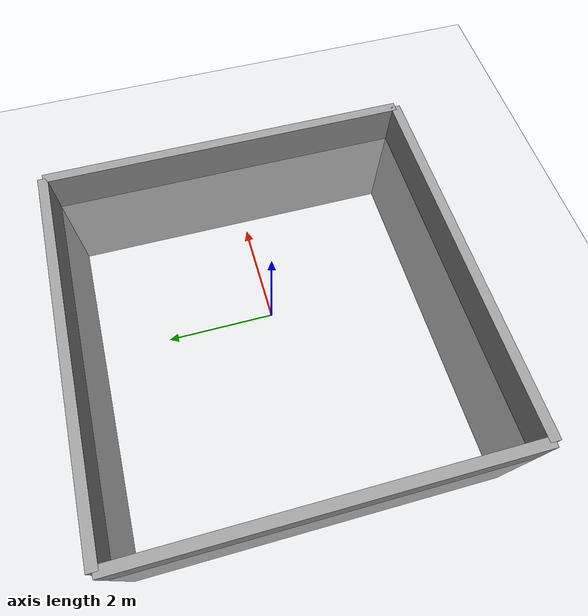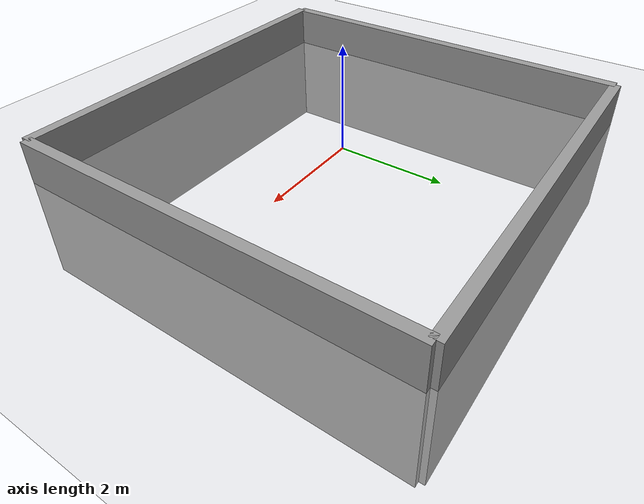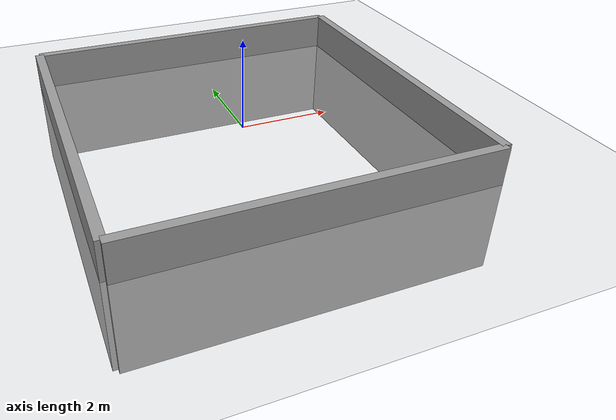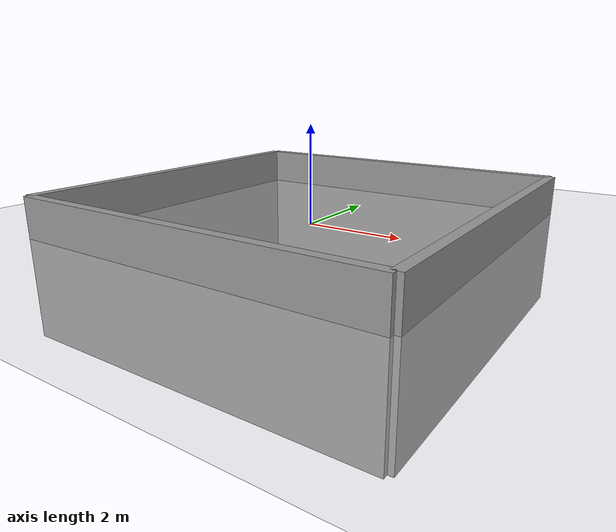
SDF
<sdf version="1.6">
 <world name="RF_world">
  <light name="sun" type="directional">
   <pose>0 0 10 0 -0 0</pose>
   <diffuse>0.8 0.8 0.8 1</diffuse>
   <specular>0.2 0.2 0.2 1</specular>
   <attenuation>
    <range>1000</range>
    <constant>0.9</constant>
    <linear>0.01</linear>
    <quadratic>0.001</quadratic>
   </attenuation>
   <direction>-0.5 0.1 -0.9</direction>
  </light>
  <model name="ground_plane">
   <static>1</static>
   <link name="link">
    <collision name="collision">
     <geometry><plane><normal>0 0 1</normal><size>100 100</size></plane></geometry>
     <surface>
      <contact><collide_bitmask>65535</collide_bitmask></contact>
      <friction><ode><mu>100</mu><mu2>50</mu2></ode></friction>
     </surface>
    </collision>
    <visual name="visual">
     <cast_shadows>0</cast_shadows>
     <geometry><plane><normal>0 0 1</normal><size>100 100</size></plane></geometry>
     <material>
      <script><uri>file://media/materials/scripts/gazebo.material</uri><name>Gazebo/Grey</name></script>
     </material>
    </visual>
   </link>
  </model>
  <gravity>0 0 -9.8</gravity>
  <magnetic_field>6e-06 2.3e-05 -4.2e-05</magnetic_field>
  <atmosphere type="adiabatic"/>
  <physics name="default_physics" default="0" type="ode">
   <max_step_size>0.001</max_step_size>
   <real_time_factor>1</real_time_factor>
   <real_time_update_rate>1000</real_time_update_rate>
  </physics>
  <scene><ambient>0.4 0.4 0.4 1</ambient><background>0.7 0.7 0.7 1</background><shadows>1</shadows></scene>
  <audio><device>default</device></audio>
  <spherical_coordinates>
   <surface_model>EARTH_WGS84</surface_model>
   <latitude_deg>0</latitude_deg>
   <longitude_deg>0</longitude_deg>
   <elevation>0</elevation>
   <heading_deg>0</heading_deg>
  </spherical_coordinates>
  <model name="wall_w">
   <static>1</static>
   <link name="link">
    <pose>0 0 1.4 0 -0 0</pose>
    <collision name="collision"><geometry><box><size>7.5 0.2 2.8</size></box></geometry></collision>
    <visual name="visual">
     <cast_shadows>0</cast_shadows>
     <geometry><box><size>7.5 0.2 2.8</size></box></geometry>
     <material>
      <script>
       <uri>model://grey_wall/materials/scripts</uri>
       <uri>model://grey_wall/materials/textures</uri>
       <name>vrc/grey_wall</name>
      </script>
     </material>
    </visual>
   </link>
   <pose>-3.75 0 -2 0 -0 1.5708</pose>
  </model>
  <model name="wall_e">
   <static>1</static>
   <link name="link">
    <pose>0 0 1.4 0 -0 0</pose>
    <collision name="collision"><geometry><box><size>7.5 0.2 2.8</size></box></geometry></collision>
    <visual name="visual">
     <cast_shadows>0</cast_shadows>
     <geometry><box><size>7.5 0.2 2.8</size></box></geometry>
     <material>
      <script>
       <uri>model://grey_wall/materials/scripts</uri>
       <uri>model://grey_wall/materials/textures</uri>
       <name>vrc/grey_wall</name>
      </script>
     </material>
    </visual>
   </link>
   <pose>3.75 0 -2 0 -0 1.57096</pose>
  </model>
  <model name="wall_s">
   <static>1</static>
   <link name="link">
    <pose>0 0 1.4 0 -0 0</pose>
    <collision name="collision"><geometry><box><size>7.5 0.2 2.8</size></box></geometry></collision>
    <visual name="visual">
     <cast_shadows>0</cast_shadows>
     <geometry><box><size>7.5 0.2 2.8</size></box></geometry>
     <material>
      <script>
       <uri>model://grey_wall/materials/scripts</uri>
       <uri>model://grey_wall/materials/textures</uri>
       <name>vrc/grey_wall</name>
      </script>
     </material>
    </visual>
   </link>
   <pose>0 -3.75 -2 0 -0 0</pose>
  </model>
  <model name="wall_n">
   <static>1</static>
   <link name="link">
    <pose>0 0 1.4 0 -0 0</pose>
    <collision name="collision"><geometry><box><size>7.5 0.2 2.8</size></box></geometry></collision>
    <visual name="visual">
     <cast_shadows>0</cast_shadows>
     <geometry><box><size>7.5 0.2 2.8</size></box></geometry>
     <material>
      <script>
       <uri>model://grey_wall/materials/scripts</uri>
       <uri>model://grey_wall/materials/textures</uri>
       <name>vrc/grey_wall</name>
      </script>
     </material>
    </visual>
   </link>
   <pose>0 3.75 -2 0 -0 0</pose>
  </model>
 </world>
</sdf>
